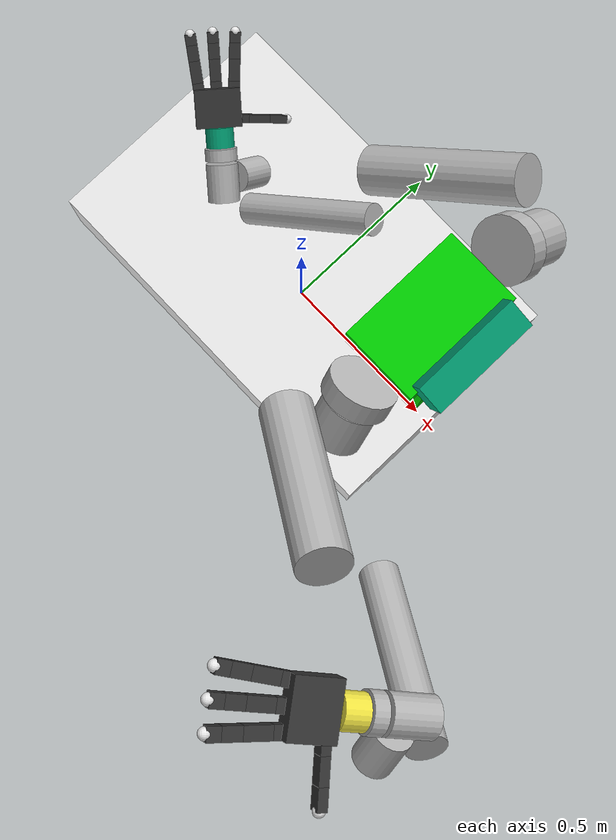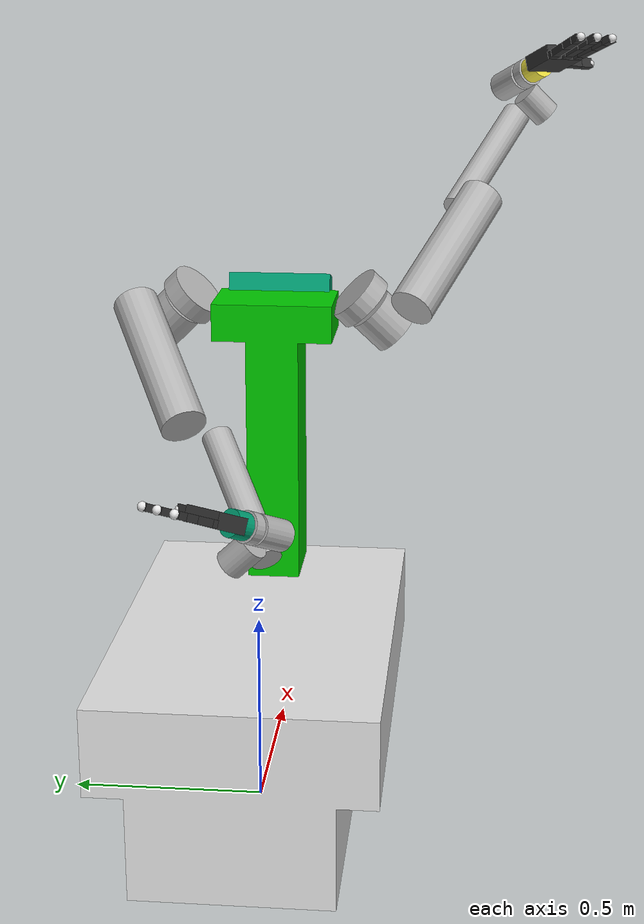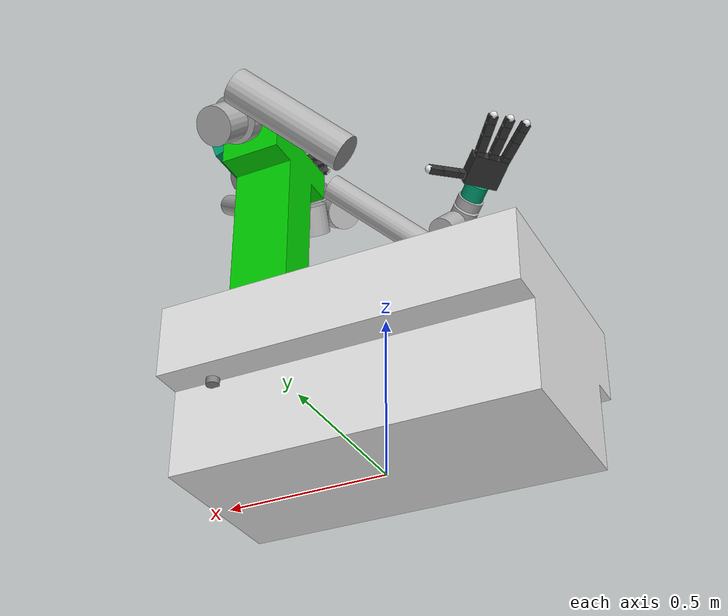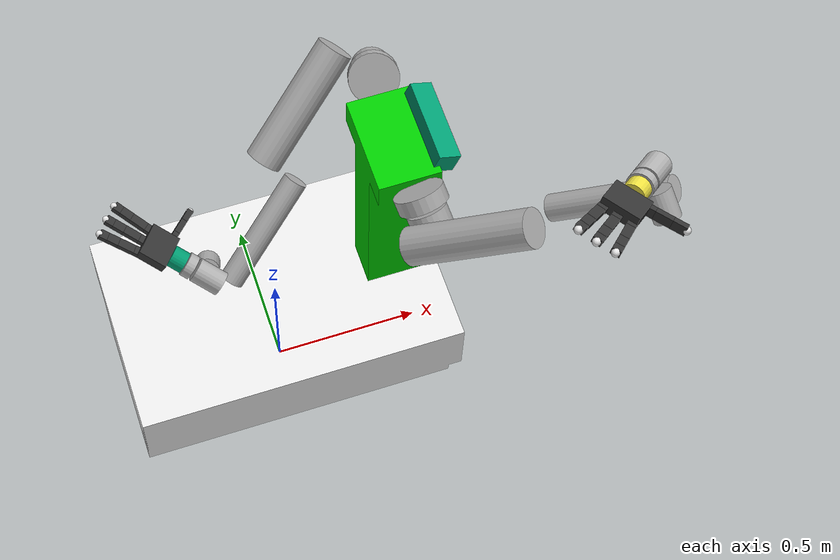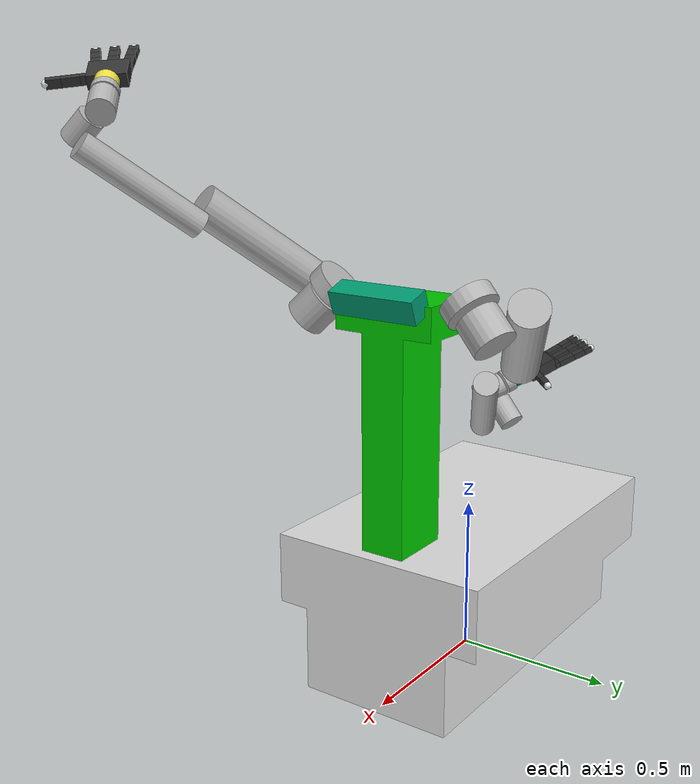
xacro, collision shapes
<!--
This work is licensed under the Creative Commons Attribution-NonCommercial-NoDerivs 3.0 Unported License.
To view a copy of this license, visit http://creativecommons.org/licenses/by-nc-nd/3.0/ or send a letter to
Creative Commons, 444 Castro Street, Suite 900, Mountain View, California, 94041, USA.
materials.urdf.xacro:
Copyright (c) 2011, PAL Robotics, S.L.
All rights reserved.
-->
<?xml version="1.0"?>
<robot name="tomm" xmlns:xacro="http://www.ros.org/wiki/xacro"
        xmlns:sensor="http://playerstage.sourceforge.net/gazebo/xmlschema/#sensor"
        xmlns:controller="http://playerstage.sourceforge.net/gazebo/xmlschema/#controller"
        xmlns:interface="http://playerstage.sourceforge.net/gazebo/xmlschema/#interface">

  <!-- Parameters -->
  <xacro:arg name="skin_version" default="full"/>

  <xacro:property name="skin_version" value="$(arg skin_version)" />
  <xacro:if value="${skin_version not in ['full','hands', 'left', 'right']}">
    <xacro:wrong_skin_version/>
  </xacro:if>

	<!--Common definitions -->
	<xacro:include filename="$(find tomm_description)/urdf/common.xacro"/>
  <xacro:include filename="$(find tomm_description)/urdf/materials.urdf.xacro"/>

	<!-- ROS_Control plugins -->
  <xacro:include filename="$(find tomm_description)/urdf/gazebo.urdf.xacro" />

	<!-- xacro macros Base -->
	<xacro:include filename="$(find tomm_description)/urdf/base/base.urdf.xacro"/>

	<!-- xacro macros Sensors -->
	<xacro:include filename="$(find tomm_description)/urdf/sensors/lidar.urdf.xacro"/>

  <!-- camera sensor -->
  <xacro:include filename="$(find tomm_description)/urdf/sensors/asus_xtiion_pro.urdf.xacro"/>

  <!-- xacro gazbeo plugin macros Sensors -->
  <xacro:include filename="$(find tomm_description)/urdf/sensors/lidar.gazebo.xacro" />
  <xacro:include filename="$(find tomm_description)/urdf/sensors/ftsensor.gazebo.xacro" />

	<!--xacro macros Arms-->
	<xacro:include filename="$(find tomm_description)/urdf/arm/arms.urdf.xacro"/>

  <!--xacro macros Hands-->
  <xacro:include filename="$(find tomm_description)/urdf/hand/hands.urdf.xacro"/>

	<!-- robot base, includes base, torso, wheels and logos -->
	<xacro:tom_base_v0 name="base" />

	<!-- robot head, includes the left camera -->
	<link name="tom_left_camera_link">
    <visual>
      <origin rpy="0 0 0" xyz="0 0 0"/>
      <geometry>
       <box size="0.01 0.01 0.01"/>
      </geometry>
      <material name="orange">
         <color rgba="0.45 0.45 0.45 1.0"/>
       </material>
    </visual>
  </link>

  <link name="tom_head_link">
    <visual>
      <origin rpy="1.57079632679 0 -1.57079632679" xyz="1 1.255 -0.838"/>
      <geometry>
        <mesh filename="package://tomm_description/meshes/head/head.stl" scale="0.001 0.001 0.001"/>
      </geometry>
      <material name="green">
         <color rgba="0.0 0.8 0.0 1"/>
       </material>
    </visual>
  </link>

  <joint name="table_head_joint" type="fixed">
		<origin rpy="0 0 0" xyz="0 0 0"/>
    <parent link="torso_link"/>
    <child link="tom_head_link"/>
  </joint>

  <joint name="tom_left_camera_joint" type="fixed">
    <origin rpy="-2.43606 -0.193804 -1.648299" xyz="0.075241 0.032279 0.211305"/>
    <parent link="torso_link"/>
    <child link="tom_left_camera_link"/>
  </joint>

	<!-- Arms -->
	<!-- Left Arm -->
	<xacro:tom_arm_v0 right_arm="false"/>
	<!-- Right Arm -->
	<xacro:tom_arm_v0 right_arm="true"/>

	<!-- Hands -->
	<!-- Left Hand -->
	<xacro:tom_hand_v0 right_hand="false"/>
  <!-- Right hand -->
	<xacro:tom_hand_v0 right_hand="true"/>

	<!-- sensors frames -->
	<xacro:tom_lidar_v0 name="laser" />

  <!-- sensor gazbeo plugins -->
  <xacro:tom_ft_gazebo name="right_wrist_ft" joint="r_wrist_3" ros_topic="tomm/right_wrist_ft" update_rate="200"/>
  <xacro:tom_ft_gazebo name="left_wrist_ft" joint="l_wrist_3" ros_topic="tomm/left_wrist_ft" update_rate="200"/>

  <xacro:tom_laser_gazebo prefix="tomm/" name="front_lidar" link="front_laser_scanner" ros_topic="tomm/front_scan" update_rate="50" min_angle="0.0" max_angle="3.141" nrays="180"/>
  <xacro:tom_laser_gazebo prefix="tomm/" name="rear_lidar" link="rear_laser_scanner" ros_topic="tomm/rear_scan" update_rate="50" min_angle="0.0" max_angle="3.141" nrays="180"/>

  <xacro:sensor_asus_xtion_pro name="tomm/asus" parent="torso_link">
      <origin xyz="0.11 0.0225 0.0" rpy="0 ${20*DEG2RAD} 0" />
  </xacro:sensor_asus_xtion_pro>

  <!-- skin sensing -->
  <xacro:if value="${skin_version == 'full'}">
    <xacro:include filename="$(find tomm_description)/urdf/skin/full_skin.urdf.xacro" />
  </xacro:if>
  <xacro:if value="${skin_version == 'hands'}">
    <xacro:include filename="$(find tomm_description)/urdf/skin/hands_skin.urdf.xacro" />
  </xacro:if>
  <xacro:if value="${skin_version == 'right'}">
    <xacro:include filename="$(find tomm_description)/urdf/skin/right_skin.urdf.xacro" />
  </xacro:if>
  <xacro:if value="${skin_version == 'left'}">
    <xacro:include filename="$(find tomm_description)/urdf/skin/left_skin.urdf.xacro" />
  </xacro:if>

</robot>

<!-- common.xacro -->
<robot name="tom" xmlns:xacro="http://www.ros.org/wiki/xacro">
  <xacro:property name="M_PI" value="3.1415926535897931" />
  <xacro:property name="VELOCITY_LIMIT_SCALE" value="0.6" />
  <xacro:property name="DEG2RAD" value="0.01745329251994329577" />

  <!--Base Parameters -->
  <xacro:property name="base_frame_mass" value="250.0" />

  <xacro:property name="base_hight" value="0.4" />
  <xacro:property name="base_width" value="0.60" />
  <xacro:property name="base_length" value="1.0" />
  <xacro:property name="base_collision_offset" value="0.10" />

  <xacro:property name="base_x_origin" value="0.4" />
  <xacro:property name="base_z_origin" value="0.5" />

  <!--Torso Parameters -->
  <xacro:property name="torso_hight" value="0.75" />
  <xacro:property name="torso_width" value="0.45" />
  <xacro:property name="torso_length" value="0.125" />
  <xacro:property name="torso_collision_offset" value="0.10" />

  <!--Wheel Parameters -->
  <xacro:property name="wheel_radius" value="0.1" />
  <xacro:property name="wheel_length" value="0.075" />

  <!--Sensor Parameters -->
  <xacro:property name="laser_hight" value="0.05" />
  <xacro:property name="laser_radius" value="0.02" />

  <!--Offset Parameters -->
  <xacro:property name="jr3_hight" value="0.05" />
  <xacro:property name="jr3_radius" value="0.035" />

  <xacro:property name="arm_joint_y_offset" value="0.225" />
  <xacro:property name="arm_joint_roll_offset" value="2.6061" />
  <xacro:property name="arm_joint_pitch_offset" value="0.6271" />

  <xacro:property name="adapter_z_offset" value="0.045" />
  <xacro:property name="adapter_joint_x_offset" value="0.045" />

  <xacro:property name="floor_to_base_frame" value="0.5" />

</robot>

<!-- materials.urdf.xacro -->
<robot name="tom">
  <material name="Blue">
    <color rgba="0.0 0.0 0.8 1.0"/>
  </material>

  <material name="Green">
    <color rgba="0.0 0.8 0.0 1.0"/>
  </material>

  <material name="Grey">
    <color rgba="0.7 0.7 0.7 1.0"/>
  </material>

  <material name="LightGrey">
    <color rgba="0.9 0.9 0.9 1.0"/>
  </material>

 <material name="DarkGrey">
   <color rgba="0.2 0.2 0.2 1.0"/>
 </material>

  <material name="Red">
    <color rgba="0.8 0.0 0.0 1.0"/>
  </material>

  <material name="White">
    <color rgba="1.0 1.0 1.0 1.0"/>
  </material>
</robot>

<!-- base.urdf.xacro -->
<robot xmlns:sensor="http://playerstage.sourceforge.net/gazebo/xmlschema/#sensor"
       xmlns:controller="http://playerstage.sourceforge.net/gazebo/xmlschema/#controller"
       xmlns:interface="http://playerstage.sourceforge.net/gazebo/xmlschema/#interface"
       xmlns:xacro="http://ros.org/wiki/xacro">

	<!--Common definitions -->
	<xacro:include filename="$(find tomm_description)/urdf/common.xacro"/>

	<!-- xacro macros Wheels-->
	<xacro:include filename="$(find tomm_description)/urdf/wheels/wheels.urdf.xacro"/>

	<!-- xacro base (includes: base, Logos, Torso, wheels) -->
	<xacro:macro name="tom_base_v0" params="name">

	<!-- Mobile base block  -->
	<link name="${name}_link">
	    <visual>
		    <origin xyz="${base_x_origin} 0 ${base_z_origin}" rpy="${90*DEG2RAD} 0 ${90*DEG2RAD}" />
		    <geometry>
		        <mesh filename="package://tomm_description/meshes/base/item_profile.dae"/>
		    </geometry>
		    <material name="LightGrey"/>
			</visual>
			<collision>
					<geometry>
		        	<mesh filename="package://tomm_description/meshes/base/item_profile_collision.dae" scale="0.001 0.0009 0.001"/>
					</geometry>
					<origin xyz="${base_x_origin + 0.15} ${(base_hight + base_collision_offset)/2 + 0.1} ${base_z_origin - 0.47 - 0.025}" rpy="${90*DEG2RAD} 0 ${-90*DEG2RAD}" />
           <surface>
                <friction>
                <ode>
                    <mu>0</mu>
                    <mu2>0</mu2>
                    <slip1>0</slip1>
                    <slip2>0</slip2>
                </ode>
                </friction>
            </surface>
			</collision>
			<inertial>
					<origin xyz="${base_x_origin - 0.45} 0 ${base_z_origin - 0.5}" />
					<mass value="${base_frame_mass}"/>
					<inertia ixx="340.82" ixy="0.001" ixz="0.001" iyy="380.20" iyz="0.001" izz="230.54"/>  <!-- inertias are set big to prevent base floating in gazebo -->
			</inertial>
	</link>

	<!-- Torso link -->
	<link name="torso_link">
	    <visual>
	        <origin xyz="-0.01614 0 -0.76268" rpy="1.57 0 1.57" />
	        <geometry>
	            <mesh filename="package://tomm_description/meshes/base/green_parts.dae"/>
	        </geometry>
	        <material name="Green"/>
	    </visual>
	    <collision>
	        <geometry>
                <mesh filename="package://tomm_description/meshes/base/green_parts_collision.dae"/>
	        </geometry>
		    <origin xyz="-0.11 -0.16 -0.8" rpy="${90*DEG2RAD} 0 ${90*DEG2RAD}" />
        </collision>

		<inertial>
		    <origin xyz="0 0 0.44" />
		    <mass value="25"/>
		    <inertia ixx="8.9" ixy="0.017" ixz="0.01" iyy="6.37" iyz="2.2" izz="6.33"/>
		</inertial>

	</link>

    <joint name="${name}_to_torso" type="fixed">
        <parent link="${name}_link"/>
        <child link="torso_link"/>
		<origin xyz="${base_x_origin + 0.01614} 0 ${base_z_origin + 0.76268}"/>
	</joint>

	<!-- Wheels-->

	<xacro:wheel parent="${name}_link" prefix="l_front_" reflect="1">
	    <origin xyz="${base_x_origin} 0.303 ${base_z_origin - 0.40}" rpy="-1.57 0 0" />
	</xacro:wheel>

	<xacro:wheel parent="${name}_link" prefix="l_rear_" reflect="1">
	    <origin xyz="${base_x_origin - 0.8115} 0.303 ${base_z_origin - 0.40}" rpy="-1.57 0 0" />
	</xacro:wheel>

	<xacro:wheel parent="${name}_link" prefix="r_front_" reflect="-1">
	    <origin xyz="${base_x_origin} -0.303 ${base_z_origin - 0.40}" rpy="-1.57 0 0" />
	</xacro:wheel>

	<xacro:wheel parent="${name}_link" prefix="r_rear_" reflect="-1">
	    <origin xyz="${base_x_origin - 0.8115} -0.303 ${base_z_origin - 0.40}" rpy="-1.57 0 0" />
	</xacro:wheel>

    <!-- Deco Logos-->

	  <link name="ICS_logo_blue_link">
		 <visual>
		  <origin xyz="0 0 0" rpy="1.57 0 1.57" />
		   <geometry>
		    <mesh filename="package://tomm_description/meshes/base/logo_blue.dae"/>
		   </geometry>
		 </visual>
		 <collision>
		  <origin xyz="0 0 0" rpy="1.57 0 1.57" />
		   <geometry>
		    <mesh filename="package://tomm_description/meshes/base/logo_blue.dae"/>
		   </geometry>
		 </collision>
		</link>

		<joint name="ICS_logo_blue" type="fixed">
		  <parent link="${name}_link"/>
		  <child link="ICS_logo_blue_link"/>
		  <origin xyz="${base_x_origin} 0 ${base_z_origin}"/>
		</joint>

		<link name="ICS_logo_grey_link">
		 <visual>
		  <origin xyz="0 0 0" rpy="1.57 0 1.57" />
		   <geometry>
		    <mesh filename="package://tomm_description/meshes/base/logo_grey.dae"/>
		   </geometry>
		 </visual>
		 <collision>
		  <origin xyz="0 0 0" rpy="1.57 0 1.57" />
		   <geometry>
		    <mesh filename="package://tomm_description/meshes/base/logo_grey.dae"/>
		   </geometry>
		 </collision>
		</link>

		<joint name="ICS_logo_grey" type="fixed">
		  <parent link="${name}_link"/>
		  <child link="ICS_logo_grey_link"/>
		  <origin xyz="${base_x_origin} 0 ${base_z_origin}"/>
		</joint>

		<!-- xacro macros gazebo-->
		<xacro:include filename="$(find tomm_description)/urdf/base/base.gazebo"/>

  </xacro:macro>
</robot>

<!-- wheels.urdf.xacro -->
<robot xmlns:xacro="http://www.ros.org/wiki/xacro" name="tom">

<xacro:include filename="$(find tomm_description)/urdf/wheels/wheels.transmission.xacro"/>

<xacro:macro name="cyl_inertia" params="mass r h">
    <inertial>
        <mass value="${mass}" />
        <inertia ixx="${(1/12)*mass*(3*r*r+h*h)}" ixy="0.0" ixz="0.0" iyy="${(1/12)*mass*(3*r*r+h*h)}" iyz="0.0" izz="${(1/2)*mass*r*r}" />
    </inertial>
</xacro:macro>

<xacro:macro name="wheel" params="parent prefix reflect *origin">
    <link name="${prefix}wheel_link">
        <visual>
            <geometry>
                <mesh filename="package://tomm_description/meshes/wheels/wheels.dae"/>
            </geometry>
            <material name="white">
                <color rgba="1 1 1 1"/>
            </material>
        </visual>
        <xacro:cyl_inertia mass="2.0" r="${wheel_radius}" h="${wheel_length}"/>
    </link>

    <gazebo reference="${prefix}wheel_link">
        <material>Gazebo/Grey</material>
    </gazebo>

    <!-- continuous not working! -->
    <joint name="${prefix}wheel_joint" type="fixed">
        <parent link="${parent}"/>
        <child link="${prefix}wheel_link" />
        <dynamics damping="0" friction="0"/>
        <xacro:insert_block name="origin" />
        <axis xyz="0 0 1" />
    </joint>

    <!--xacro:wheels_transmission prefix="${prefix}"/-->

</xacro:macro>

</robot>

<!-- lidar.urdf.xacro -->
<robot xmlns:sensor="http://playerstage.sourceforge.net/gazebo/xmlschema/#sensor"
       xmlns:controller="http://playerstage.sourceforge.net/gazebo/xmlschema/#controller"
       xmlns:interface="http://playerstage.sourceforge.net/gazebo/xmlschema/#interface"
       xmlns:xacro="http://ros.org/wiki/xacro">

	<!--Common definitions -->
	<xacro:include filename="$(find tomm_description)/urdf/common.xacro"/>

	<!-- xacro sensors  -->
	<xacro:macro name="tom_lidar_v0" params="name">

		<!-- Sensors -->
		<link name="front_${name}_scanner_link">
		 	<visual>
		  	<origin xyz="0 0 0" rpy="0 0 0" />
		   		<geometry>
		      	<cylinder length="${laser_hight}" radius="${laser_radius}" />
		   		</geometry>
		   		<material name="light_grey">
		     		<color rgba="0.5 0.5 0.5 1"/>
		   		</material>
		 	</visual>
			<collision>
		  	<origin xyz="0 0 0" rpy="0 0 0" />
		    <geometry>
		    	<cylinder length="${laser_hight}" radius="${laser_radius}" />
		    </geometry>
		  </collision>
		</link>

		<joint name="front_${name}_scanner" type="fixed">
		  <parent link="base_link"/>
		  <child link="front_${name}_scanner_link"/>
		  <origin xyz="${base_x_origin + 0.01464} 0.26511 ${base_z_origin - 0.22}" rpy="3.14 0 0.785"/>
		</joint>

		<link name="rear_${name}_scanner_link">
		 <visual>
		  <origin xyz="0 0 0" rpy="0 0 0" />
		   <geometry>
		     <cylinder length="${laser_hight}" radius="${laser_radius}" />
		   </geometry>
		   <material name="light_grey"/>
		 </visual>
			<collision>
		  	<origin xyz="0 0 0" rpy="0 0 0" />
		    <geometry>
		    	<cylinder length="${laser_hight}" radius="${laser_radius}" />
		    </geometry>
		  </collision>
		</link>

		<joint name="rear_${name}_scanner" type="fixed">
		  <parent link="base_link"/>
		  <child link="rear_${name}_scanner_link"/>
		  <origin xyz="${base_x_origin - 0.86614} -0.26415 ${base_z_origin - 0.22}" rpy="3.14 0 -2.355"/>
		</joint>

  </xacro:macro>

</robot>

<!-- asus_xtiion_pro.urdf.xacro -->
<robot name="sensor_asus_xtion_pro" xmlns:xacro="http://ros.org/wiki/xacro">

     <xacro:property name="asus_xtion_scale" value="0.001"/>
     <xacro:property name="asus_xtion_pro_depth_rel_rgb_py" value="0.0270" />
     <xacro:property name="asus_xtion_pro_rgb_rel_rgb_py"   value="-0.0220" />
     <xacro:property name="M_PI" value="3.1415926535897931" />

     <xacro:macro name="sensor_asus_xtion_pro" params="name parent *origin">

          <joint name="${name}_rgb_joint" type="fixed">
               <xacro:insert_block name="origin" />
               <parent link="${parent}"/>
               <child link="${name}_rgb_frame" />
          </joint>

          <link name="${name}_rgb_frame">
               <inertial>
                    <mass value="0.001" />
                    <origin xyz="0 0 0" />
                    <inertia ixx="0.0001" ixy="0.0" ixz="0.0" iyy="0.0001" iyz="0.0" izz="0.0001" />
               </inertial>
          </link>

          <joint name="${name}_rgb_optical_joint" type="fixed">
               <origin xyz="0 0 0" rpy="${-M_PI/2} 0 ${-M_PI/2}" />
               <parent link="${name}_rgb_frame" />
               <child link="${name}_rgb_optical_frame" />
          </joint>

          <link name="${name}_rgb_optical_frame">
               <inertial>
                    <mass value="0.001" />
                    <origin xyz="0 0 0" />
                    <inertia ixx="0.0001" ixy="0.0" ixz="0.0" iyy="0.0001" iyz="0.0" izz="0.0001" />
               </inertial>
          </link>

          <joint name="${name}_joint" type="fixed">
               <origin xyz="0 ${asus_xtion_pro_rgb_rel_rgb_py} 0" rpy="0 0 0"/>
               <parent link="${name}_rgb_frame"/>
               <child link="${name}_link"/>
          </joint>

          <link name="${name}_link">
               <visual>
                    <origin xyz="-0.01 0 0" rpy="${-M_PI/2} -${M_PI} ${-M_PI/2}"/>
                    <geometry>
                         <mesh filename="package://tomm_description/meshes/cameras/asus/asus_xtion_pro_live.dae" scale="${asus_xtion_scale} ${asus_xtion_scale} ${asus_xtion_scale}"/>
                    </geometry>
               </visual>
               <collision>
                    <origin xyz="0.0 0.0 0.0" rpy="0 0 0" />
                    <geometry>
                         <box size="0.0730 .2760 0.0720"/>
                    </geometry>
               </collision>
               <inertial>
                    <mass value="0.01" />
                    <origin xyz="0 0 0" />
                    <inertia ixx="0.001" ixy="0.0" ixz="0.0" iyy="0.001" iyz="0.0" izz="0.001" />
               </inertial>
          </link>

          <joint name="${name}_depth_joint" type="fixed">
               <origin xyz="0 ${asus_xtion_pro_depth_rel_rgb_py} 0" rpy="0 0 0" />
               <parent link="${name}_rgb_frame" />
               <child link="${name}_depth_frame" />
          </joint>

          <link name="${name}_depth_frame">
               <inertial>
                    <mass value="0.01" />
                    <origin xyz="0 0 0" />
                    <inertia ixx="0.001" ixy="0.0" ixz="0.0" iyy="0.001" iyz="0.0" izz="0.001" />
               </inertial>
          </link>

          <joint name="${name}_depth_optical_joint" type="fixed">
               <origin xyz="0 0 0" rpy="${-M_PI/2} 0 ${-M_PI/2}" />
               <parent link="${name}_depth_frame" />
               <child link="${name}_depth_optical_frame" />
          </joint>

          <link name="${name}_depth_optical_frame">
               <inertial>
                    <mass value="0.001" />
                    <origin xyz="0 0 0" />
                    <inertia ixx="0.0001" ixy="0.0" ixz="0.0" iyy="0.0001" iyz="0.0" izz="0.0001" />
               </inertial>
          </link>

          <!-- RGBD sensor for simulation, same as Kinect -->
          <sensor_xtion_pro_gazebo/>

     </xacro:macro>

     <!-- ====================================================
                           Gazebo
     ========================================================= -->

     <xacro:macro name="sensor_xtion_pro_gazebo">
          <gazebo reference="${name}_depth_frame">
               <sensor type="depth" name="${name}_sensor">
                    <always_on>true</always_on>
                    <update_rate>10.0</update_rate>
                    <camera>
                         <horizontal_fov>${60.0*M_PI/180.0}</horizontal_fov>
                         <image>
                              <format>R8G8B8</format>
                              <width>640</width>
                              <height>480</height>
                         </image>
                         <clip>
                              <near>0.05</near>
                              <far>10</far>
                         </clip>
                    </camera>

                    <plugin name="${name}_controller" filename="libgazebo_ros_openni_kinect.so">
                         <cameraName>${name}</cameraName>
                         <alwaysOn>true</alwaysOn>
                         <updateRate>10</updateRate>
                         <imageTopicName>rgb/image_raw</imageTopicName>
                         <depthImageTopicName>depth/image_raw</depthImageTopicName>
                         <pointCloudTopicName>depth/points</pointCloudTopicName>
                         <cameraInfoTopicName>rgb/camera_info</cameraInfoTopicName>
                         <depthImageCameraInfoTopicName>depth/camera_info</depthImageCameraInfoTopicName>
                         <frameName>${name}_depth_optical_frame</frameName>
                         <baseline>0.1</baseline>
                         <distortion_k1>0.0</distortion_k1>
                         <distortion_k2>0.0</distortion_k2>
                         <distortion_k3>0.0</distortion_k3>
                         <distortion_t1>0.0</distortion_t1>
                         <distortion_t2>0.0</distortion_t2>
                         <pointCloudCutoff>0.4</pointCloudCutoff>
                    </plugin>
               </sensor>
          </gazebo>
     </xacro:macro>
</robot>

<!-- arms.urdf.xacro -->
<robot xmlns:sensor="http://playerstage.sourceforge.net/gazebo/xmlschema/#sensor"
       xmlns:controller="http://playerstage.sourceforge.net/gazebo/xmlschema/#controller"
       xmlns:interface="http://playerstage.sourceforge.net/gazebo/xmlschema/#interface"
       xmlns:xacro="http://ros.org/wiki/xacro">

	<!--Common definitions -->
	<xacro:include filename="$(find tomm_description)/urdf/common.xacro"/>

	<!-- Hand specializations -->
	<!--xacro macros Arms-->
	<xacro:include filename="$(find tomm_description)/urdf/arm/ur5/ur5.urdf.xacro"/>

	<!-- xacro arms (right_arm=true -> right arm, false -> left arm -->
	<xacro:macro name="tom_arm_v0" params="right_arm">

		<xacro:unless value="${right_arm}">
			<!-- left UR5 robot model -->
			<xacro:ur5_robot prefix="l_" joint_limited="false"/>
			<joint name="torso_to_l_arm" type="fixed">
				<parent link="torso_link"/>
				<child link="l_base_link"/>
				<origin xyz="0 ${arm_joint_y_offset} 0" rpy="${arm_joint_roll_offset} ${arm_joint_pitch_offset} -2.6061"/>
			</joint>

			<!-- This is the JR3 adapter -->
			<link name="l_hand_base_adapter_link">
			    <visual>
				    <origin xyz="0 0 -${adapter_z_offset}" rpy="${M_PI/2} 0 ${M_PI/2}" />
				    <geometry>
				        <mesh filename="package://tomm_description/meshes/arm/hand_mount.dae"/>
				    </geometry>
			    </visual>
			    <collision>
					<origin xyz="0 0 ${-jr3_hight/2}" rpy="0 0 0" />
				    <geometry>
				  	    <cylinder length="${jr3_hight}" radius="${jr3_radius}" />
				    </geometry>
				</collision>
			</link>

			<joint name="l_hand_base_adapter_joint" type="fixed">
				<parent link="l_ee_link"/>
				<child link="l_hand_base_adapter_link"/>
				<origin xyz="${adapter_joint_x_offset} 0 0" rpy="${M_PI/2} 0.785 ${M_PI/2}"/>
			</joint>

		</xacro:unless>

		<xacro:if value="${right_arm}">
			<!-- right UR5 robot model -->
			<xacro:ur5_robot prefix="r_" joint_limited="false"/>
			<joint name="torso_to_r_arm" type="fixed">
				<parent link="torso_link"/>
				<child link="r_base_link"/>
				<origin xyz="0 -${arm_joint_y_offset} 0" rpy="${arm_joint_roll_offset} -${arm_joint_pitch_offset} -0.5355"/>
			</joint>

			<!-- This is the JR3 adapter -->
			 <link name="r_hand_base_adapter_link">
			 <visual>
				<origin xyz="0 0 -${adapter_z_offset}" rpy="${M_PI/2} 0 ${M_PI/2}" />
				 <geometry>
				  <mesh filename="package://tomm_description/meshes/arm/hand_mount.dae"/>
				 </geometry>
			 </visual>
			 <collision>
					<origin xyz="0 0 ${-jr3_hight/2}" rpy="0 0 0" />
				  <geometry>
				  	<cylinder length="${jr3_hight}" radius="${jr3_radius}" />
				  </geometry>
				</collision>
			</link>
			<joint name="r_hand_base_adapter_joint" type="fixed">
				<parent link="r_ee_link"/>
				<child link="r_hand_base_adapter_link"/>
				<origin xyz="${adapter_joint_x_offset} 0 0" rpy="${M_PI/2} 2.356 ${M_PI/2}"/>
			</joint>

		</xacro:if>

  </xacro:macro>

</robot>

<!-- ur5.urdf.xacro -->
<robot xmlns:xacro="http://www.ros.org/wiki/xacro">

  <xacro:include filename="$(find tomm_description)/urdf/arm/ur5/ur5.transmission.xacro"/>
  <xacro:include filename="$(find tomm_description)/urdf/arm/ur5/ur5.gazebo"/>

  <xacro:property name="pi" value="3.14159265" />

  <!-- Inertia parameters -->
  <xacro:property name="base_mass" value="4.0" />  <!-- This mass might be incorrect -->
  <xacro:property name="shoulder_mass" value="3.7000" />
  <xacro:property name="upper_arm_mass" value="8.3930" />
  <xacro:property name="forearm_mass" value="2.2750" />
  <xacro:property name="wrist_1_mass" value="1.2190" />
  <xacro:property name="wrist_2_mass" value="1.2190" />
  <xacro:property name="wrist_3_mass" value="0.1879" />

  <xacro:property name="shoulder_cog" value="0.0 0.00193 -0.02561" />
  <xacro:property name="upper_arm_cog" value="0.0 -0.024201 0.2125" />
  <xacro:property name="forearm_cog" value="0.0 0.0265 0.11993" />
  <xacro:property name="wrist_1_cog" value="0.0 0.110949 0.01634" />
  <xacro:property name="wrist_2_cog" value="0.0 0.0018 0.11099" />
  <xacro:property name="wrist_3_cog" value="0.0 0.001159 0.0" />

  <!-- Kinematic model -->
  <!-- Properties from urcontrol.conf -->
  <xacro:property name="ur5_d1" value="0.089159" />
  <xacro:property name="ur5_a2" value="0.42500" />
  <xacro:property name="ur5_a3" value="0.39225" />
  <xacro:property name="ur5_d4" value="0.10915" />
  <xacro:property name="ur5_d5" value="0.09465" />
  <xacro:property name="ur5_d6" value="0.0823" />

  <!-- Arbitrary offsets for shoulder/elbow joints -->
  <xacro:property name="shoulder_offset" value="0.13585" />  <!-- measured from model -->
  <xacro:property name="elbow_offset" value="-0.1197" /> <!-- measured from model -->

  <!-- link lengths used in model -->
  <xacro:property name="shoulder_height" value="${ur5_d1}" />
  <xacro:property name="upper_arm_length" value="${ur5_a2}" />
  <xacro:property name="forearm_length" value="${ur5_a3}" />
  <xacro:property name="wrist_1_length" value="${ur5_d4 - elbow_offset - shoulder_offset}" />
  <xacro:property name="wrist_2_length" value="${ur5_d5}" />
  <xacro:property name="wrist_3_length" value="${ur5_d6}" />
  <!--xacro:property name="shoulder_height" value="0.089159" /-->
  <!--xacro:property name="shoulder_offset" value="0.13585" /-->  <!-- shoulder_offset - elbow_offset + wrist_1_length = 0.10915 -->
  <!--xacro:property name="upper_arm_length" value="0.42500" /-->
  <!--xacro:property name="elbow_offset" value="0.1197" /-->       <!-- CAD measured -->
  <!--xacro:property name="forearm_length" value="0.39225" /-->
  <!--xacro:property name="wrist_1_length" value="0.093" /-->     <!-- CAD measured -->
  <!--xacro:property name="wrist_2_length" value="0.09465" /-->   <!-- In CAD this distance is 0.930, but in the spec it is 0.09465 -->
  <!--xacro:property name="wrist_3_length" value="0.0823" /-->

  <xacro:property name="shoulder_radius" value="0.060" />   <!-- manually measured -->
  <xacro:property name="upper_arm_radius" value="0.054" />  <!-- manually measured -->
  <xacro:property name="elbow_radius" value="0.060" />      <!-- manually measured -->
  <xacro:property name="forearm_radius" value="0.040" />    <!-- manually measured -->
  <xacro:property name="wrist_radius" value="0.045" />      <!-- manually measured -->

    <xacro:macro name="cylinder_inertial" params="radius length mass *origin">
        <mass value="${mass}" />
        <xacro:insert_block name="origin" />
        <inertia ixx="${0.0833333 * mass * (3 * radius * radius + length * length)}" ixy="0.0" ixz="0.0"
                 iyy="${0.0833333 * mass * (3 * radius * radius + length * length)}" iyz="0.0"
                 izz="${0.5 * mass * radius * radius}" />
    </xacro:macro>

    <xacro:macro name="ur5_robot" params="prefix joint_limited">

        <link name="${prefix}base_link" >

            <visual>
                <geometry>
                    <mesh filename="package://tomm_description/meshes/arm/ur5/visual/Base.dae" />
                </geometry>
                <material name="LightGrey">
                    <color rgba="0.7 0.7 0.7 1.0"/>
                </material>
            </visual>

            <collision>
                <geometry>
                    <!--mesh filename="package://tomm_description/meshes/arm/ur5/collision/base.stl" /-->
                    <cylinder length="0.05" radius="0.08"/>
                </geometry>
            </collision>

            <inertial>
                <xacro:cylinder_inertial radius="0.06" length="0.05" mass="${base_mass}">
                    <origin xyz="0.0 0.0 0.0" rpy="0 0 0" />
                </xacro:cylinder_inertial>
            </inertial>
        </link>

        <joint name="${prefix}shoulder_pan_joint" type="revolute">
            <parent link="${prefix}base_link" />
            <child link = "${prefix}shoulder_link" />
            <origin xyz="0.0 0.0 ${shoulder_height}" rpy="0.0 0.0 0.0" />
            <axis xyz="0 0 1" />
            <xacro:unless value="${joint_limited}">
                <limit lower="${-pi}" upper="${pi}" effort="500.0" velocity="3.15"/>
            </xacro:unless>
            <xacro:if value="${joint_limited}">
                <limit lower="${-pi}" upper="${pi}" effort="500.0" velocity="3.15"/>
            </xacro:if>
            <dynamics damping="1.0" friction="0.0"/>
        </joint>

        <link name="${prefix}shoulder_link">

            <visual>
                <geometry>
                    <mesh filename="package://tomm_description/meshes/arm/ur5/visual/Shoulder.dae" />
                </geometry>
                <material name="LightGrey">
                    <color rgba="0.7 0.7 0.7 1.0"/>
                </material>
            </visual>

            <collision>
                <geometry>
                    <!--mesh filename="package://tomm_description/meshes/arm/ur5/collision/shoulder.stl" /-->
                    <cylinder length="0.1" radius="0.065"/>
                </geometry>
            </collision>

            <inertial>
                <xacro:cylinder_inertial radius="0.06" length="0.15" mass="${shoulder_mass}">
                    <origin xyz="0.0 0.0 0.0" rpy="0 0 0" />
                </xacro:cylinder_inertial>
            </inertial>
        </link>

        <joint name="${prefix}shoulder_lift_joint" type="revolute">
            <parent link="${prefix}shoulder_link" />
            <child link = "${prefix}upper_arm_link" />
            <origin xyz="0.0 ${shoulder_offset} 0.0" rpy="0.0 ${pi / 2.0} 0.0" />
            <axis xyz="0 1 0" />
            <xacro:unless value="${joint_limited}">
                <limit lower="${-pi}" upper="${pi}" effort="500.0" velocity="3.15"/>
            </xacro:unless>
            <xacro:if value="${joint_limited}">
                <limit lower="${-pi}" upper="${pi}" effort="500.0" velocity="3.15"/>
            </xacro:if>
            <dynamics damping="1.0" friction="0.0"/>
        </joint>

        <link name="${prefix}upper_arm_link">

            <visual>
                <geometry>
                    <mesh filename="package://tomm_description/meshes/arm/ur5/visual/UpperArm.dae" />
                </geometry>
                <material name="LightGrey">
                    <color rgba="0.7 0.7 0.7 1.0"/>
                </material>
            </visual>

            <collision>
                <geometry>
                    <!--mesh filename="package://tomm_description/meshes/arm/ur5/collision/upper_arm.stl" /-->
                    <cylinder length="${ur5_a2}" radius="0.06"/> <!-- simon: reduced ${ur5_a2 - 0.11} -->
                </geometry>
                <origin xyz="0.0 0.0 ${ur5_a2/2}" rpy="0.0 0.0 0.0" />
            </collision>

            <inertial>
                <xacro:cylinder_inertial radius="0.06" length="0.56" mass="${upper_arm_mass}">
                    <origin xyz="0.0 0.0 0.28" rpy="0 0 0" />
                </xacro:cylinder_inertial>
            </inertial>
        </link>

        <joint name="${prefix}elbow_joint" type="revolute">
            <parent link="${prefix}upper_arm_link" />
            <child link = "${prefix}forearm_link" />
            <origin xyz="0.0 ${elbow_offset} ${upper_arm_length}" rpy="0.0 0.0 0.0" />
            <axis xyz="0 1 0" />
            <xacro:unless value="${joint_limited}">
                <limit lower="${-pi}" upper="${pi}" effort="500.0" velocity="3.15"/>
            </xacro:unless>
            <xacro:if value="${joint_limited}">
                <limit lower="${-pi}" upper="${pi}" effort="500.0" velocity="3.15"/>
            </xacro:if>
            <dynamics damping="1.0" friction="0.0"/>
        </joint>

        <link name="${prefix}forearm_link">

            <visual>
                <geometry>
                    <mesh filename="package://tomm_description/meshes/arm/ur5/visual/Forearm.dae" />
                </geometry>
                <material name="LightGrey">
                    <color rgba="0.7 0.7 0.7 1.0"/>
                </material>
            </visual>

            <collision>
                <geometry>
                    <!--mesh filename="package://tomm_description/meshes/arm/ur5/collision/forearm.stl" /-->
                    <cylinder length="${ur5_a3}" radius="${forearm_radius}"/>
                </geometry>
                <origin xyz="0.0 0.0 ${ur5_a3/2}" rpy="0.0 0.0 0.0" />
            </collision>
            <inertial>
                <xacro:cylinder_inertial radius="0.06" length="0.5" mass="${forearm_mass}">
                <origin xyz="0.0 0.0 0.25" rpy="0 0 0" />
                </xacro:cylinder_inertial>
            </inertial>
        </link>

        <joint name="${prefix}wrist_1_joint" type="revolute">
            <parent link="${prefix}forearm_link" />
            <child link = "${prefix}wrist_1_link" />
            <origin xyz="0.0 0.0 ${forearm_length}" rpy="0.0 ${pi / 2.0} 0.0" />
            <axis xyz="0 1 0" />
            <xacro:unless value="${joint_limited}">
                <limit lower="${-pi}" upper="${pi}" effort="500.0" velocity="3.2"/>
            </xacro:unless>
            <xacro:if value="${joint_limited}">
                <limit lower="${-pi}" upper="${pi}" effort="500.0" velocity="3.2"/>
            </xacro:if>
            <dynamics damping="1.0" friction="0.0"/>
        </joint>

        <link name="${prefix}wrist_1_link">

            <visual>
                <geometry>
                    <mesh filename="package://tomm_description/meshes/arm/ur5/visual/Wrist1.dae" />
                </geometry>
                <material name="LightGrey">
                    <color rgba="0.7 0.7 0.7 1.0"/>
                </material>
            </visual>

            <collision>
                <geometry>
                    <!--mesh filename="package://tomm_description/meshes/arm/ur5/collision/wrist_1.stl" /-->
                    <cylinder length="${ur5_d4 - 0.02}" radius="${0.04}"/>
                </geometry>
                <origin xyz="0.0 ${ur5_d4 - 0.02} 0.0" rpy="0.0 0.0 0.0" />
            </collision>

            <inertial>
                <xacro:cylinder_inertial radius="0.6" length="0.12" mass="${wrist_1_mass}">
                    <origin xyz="0.0 0.0 0.0" rpy="${pi} 0 0" />
                </xacro:cylinder_inertial>
            </inertial>
        </link>

        <joint name="${prefix}wrist_2_joint" type="revolute">
            <parent link="${prefix}wrist_1_link" />
            <child link = "${prefix}wrist_2_link" />
            <origin xyz="0.0 ${wrist_1_length} 0.0" rpy="0.0 0.0 0.0" />
            <axis xyz="0 0 1" />
            <xacro:unless value="${joint_limited}">
                <limit lower="${-pi}" upper="${pi}" effort="500.0" velocity="3.2"/>
            </xacro:unless>
            <xacro:if value="${joint_limited}">
                <limit lower="${-pi}" upper="${pi}" effort="500.0" velocity="3.2"/>
            </xacro:if>
            <dynamics damping="1.0" friction="0.0"/>
        </joint>

        <link name="${prefix}wrist_2_link">

            <visual>
                <geometry>
                    <mesh filename="package://tomm_description/meshes/arm/ur5/visual/Wrist2.dae" />
                </geometry>
                <material name="LightGrey">
                    <color rgba="0.7 0.7 0.7 1.0"/>
                </material>
            </visual>

            <collision>
                <geometry>
                    <!--mesh filename="package://tomm_description/meshes/arm/ur5/collision/wrist_2.stl" /-->
                    <cylinder length="${ur5_d5 }" radius="${0.04}"/>
                </geometry>
                <origin xyz="0.0 -0.01 ${ur5_d5}" rpy="${pi/2.0} 0.0 0.0" />
            </collision>

            <inertial>
                <xacro:cylinder_inertial radius="0.6" length="0.12" mass="${wrist_2_mass}">
                    <origin xyz="0.0 0.0 0.0" rpy="0 0 0" />
                </xacro:cylinder_inertial>
            </inertial>
        </link>

        <joint name="${prefix}wrist_3_joint" type="revolute">
            <parent link="${prefix}wrist_2_link" />
            <child link = "${prefix}wrist_3_link" />
            <origin xyz="0.0 0.0 ${wrist_2_length}" rpy="0.0 0.0 0.0" />
            <axis xyz="0 1 0" />
            <xacro:unless value="${joint_limited}">
                <limit lower="${-pi}" upper="${pi}" effort="500.0" velocity="3.2"/>
            </xacro:unless>
            <xacro:if value="${joint_limited}">
                <limit lower="${-pi}" upper="${pi}" effort="500.0" velocity="3.2"/>
            </xacro:if>
            <dynamics damping="1.0" friction="0.0"/>
        </joint>

        <link name="${prefix}wrist_3_link">

            <visual>
                <geometry>
                    <mesh filename="package://tomm_description/meshes/arm/ur5/visual/Wrist3.dae" />
                </geometry>
                <material name="LightGrey">
                    <color rgba="0.7 0.7 0.7 1.0"/>
                </material>
            </visual>

            <collision>
                <geometry>
                    <!--mesh filename="package://tomm_description/meshes/arm/ur5/collision/wrist_3.stl" /-->
                    <cylinder length="0.03" radius="${0.04}"/>
                </geometry>
                <origin xyz="0 0.06 0" rpy="${pi/2.0} 0 0" />
            </collision>

            <inertial>
                <xacro:cylinder_inertial radius="0.6" length="0.12" mass="${wrist_3_mass}">
                    <origin xyz="0.0 0.0 0.0" rpy="0 0 0" />
                </xacro:cylinder_inertial>
            </inertial>
        </link>

        <joint name="${prefix}ee_fixed_joint" type="fixed">
            <parent link="${prefix}wrist_3_link" />
            <child link = "${prefix}ee_link" />
            <origin xyz="0.0 ${wrist_3_length} 0.0" rpy="0.0 0.0 ${pi/2.0}" />
        </joint>

        <link name="${prefix}ee_link">
            <collision>
                <geometry>
                    <box size="0.01 0.01 0.01"/>
                </geometry>
                <origin rpy="0 0 0" xyz="-0.01 0 0"/>
            </collision>
        </link>

  <xacro:ur5_arm_transmission prefix="${prefix}" />
  <xacro:ur5_arm_gazebo prefix="${prefix}"/>

  </xacro:macro>

</robot>

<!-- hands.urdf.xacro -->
<robot xmlns:sensor="http://playerstage.sourceforge.net/gazebo/xmlschema/#sensor"
       xmlns:controller="http://playerstage.sourceforge.net/gazebo/xmlschema/#controller"
       xmlns:interface="http://playerstage.sourceforge.net/gazebo/xmlschema/#interface"
       xmlns:xacro="http://ros.org/wiki/xacro">

	<!--Common definitions -->
	<xacro:include filename="$(find tomm_description)/urdf/common.xacro"/>

	<!-- Hand specializations -->
	<xacro:include filename="$(find tomm_description)/urdf/hand/allegro_hand/allegro_hand_right.urdf.xacro"/>
  <xacro:include filename="$(find tomm_description)/urdf/hand/allegro_hand/allegro_hand_left.urdf.xacro"/>

	<!-- xacro hands (right_hand=true -> right hand, false -> left hand -->
	<xacro:macro name="tom_hand_v0" params="right_hand">

		<xacro:unless value="${right_hand}">
			<xacro:allegro_hand_left prefix="l_hand_"/>
			<joint name="l_hand_base_joint" type="fixed">
		  	<parent link="l_hand_base_adapter_link"/>
		  	<child link="l_hand_base_link"/>
		  	<origin xyz="0.01 0 0.095" rpy="0 0 0"/>
  		</joint>
		</xacro:unless>
		<xacro:if value="${right_hand}">
			<xacro:allegro_hand_right prefix="r_hand_"/>
			<joint name="r_hand_base_joint" type="fixed">
		  	<parent link="r_hand_base_adapter_link"/>
		  	<child link="r_hand_base_link"/>
		  	<origin xyz="0.01 0 0.095" rpy="0 0 0"/>
  		</joint>
		</xacro:if>

  </xacro:macro>

</robot>

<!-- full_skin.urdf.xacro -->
<robot name="reemc" xmlns:xacro="http://ros.org/wiki/xacro">

  <xacro:include filename="$(find tomm_description)/urdf/sensors/skin.gazebo.xacro" />
  <xacro:property name="update_rate"       value="100.0" />
  <xacro:property name="min_range"       value="0.0" />
  <xacro:property name="max_range"       value="0.1" />

  <!-- right arm -->
  <xacro:reemc_skin name="tomm_p101e" parent="torso_link" update_rate="${update_rate}" min_range="${min_range}" max_range="${max_range}"/>
  <xacro:reemc_skin name="tomm_p102e" parent="r_upper_arm_link" update_rate="${update_rate}" min_range="${min_range}" max_range="${max_range}"/>
  <xacro:reemc_skin name="tomm_p103e" parent="r_forearm_link" update_rate="${update_rate}" min_range="${min_range}" max_range="${max_range}"/>

  <!-- left arm -->
  <xacro:reemc_skin name="tomm_p201e" parent="l_upper_arm_link" update_rate="${update_rate}" min_range="${min_range}" max_range="${max_range}"/>
  <xacro:reemc_skin name="tomm_p202e" parent="l_forearm_link" update_rate="${update_rate}" min_range="${min_range}" max_range="${max_range}"/>

  <!-- right hand -->
  <xacro:reemc_skin name="tomm_p301e" parent="r_hand_base_link" update_rate="${update_rate}" min_range="${min_range}" max_range="${max_range}"/>

  <!-- left hand -->
  <xacro:reemc_skin name="tomm_p401e" parent="l_hand_base_link" update_rate="${update_rate}" min_range="${min_range}" max_range="${max_range}"/>

</robot>
